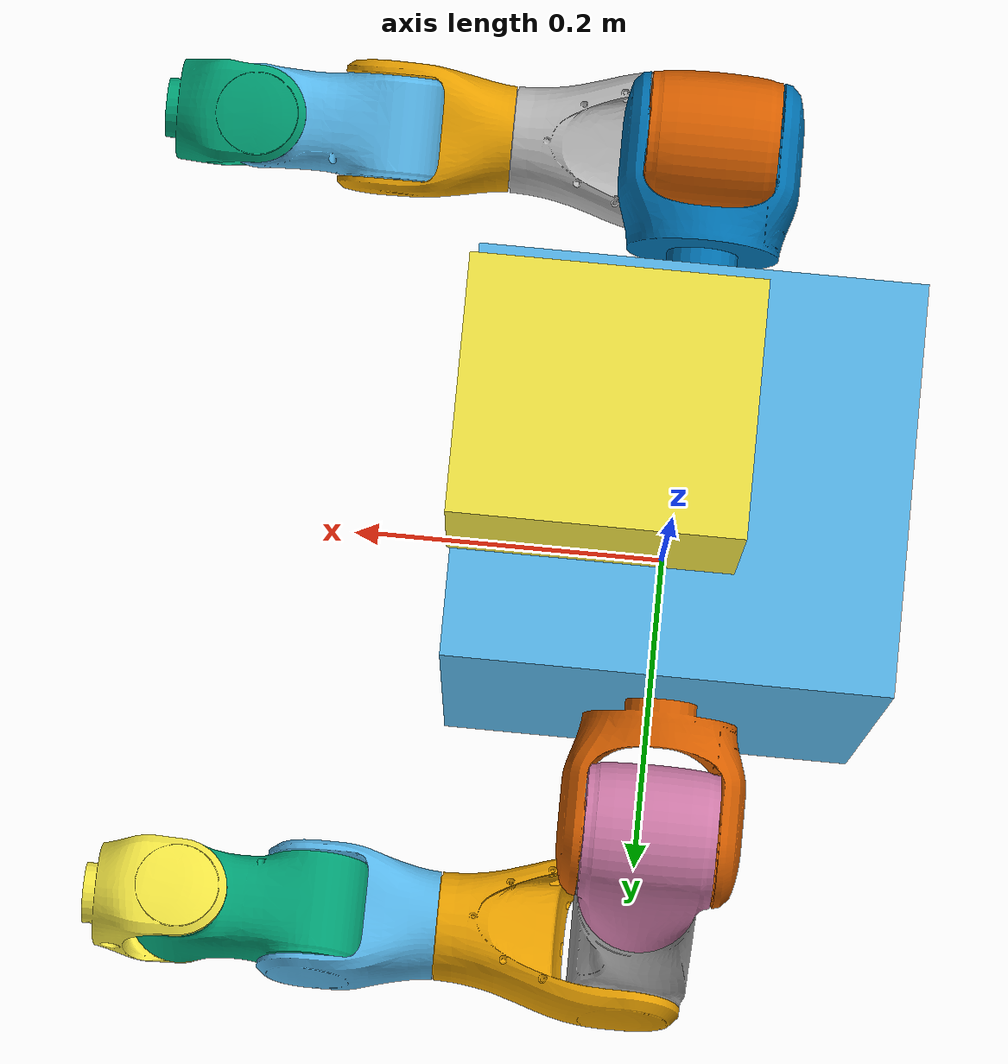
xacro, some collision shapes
<?xml version="1.0" encoding="utf-8"?>

<robot name="atom" xmlns:xacro="http://www.ros.org/wiki/xacro">

	<xacro:property name="type" value="upper"/>

	<link name="pelvis">
		<inertial>
			<origin xyz="0.0006 0.0000 -0.0998"/>
			<mass value="6.5370"/>
			<inertia ixx="0.0344" ixy="0.0000" ixz="0.0001" iyy="0.0292" iyz="0.0000" izz="0.0214"/>
		</inertial>
		<visual>
			<geometry>
				<mesh filename="file://$(find dobot_atom_description)/meshes/body/pelvis.obj"/>
			</geometry>
		</visual>
	</link>

	<!-- Without Left Leg -->

	<!-- Without Right Leg -->
	<!-- xacro:AtomLeg name="" direction="-1" parent_link="pelvis"/-->

	<!-- Upper Body (Torso, Head, IMU) -->
	<xacro:include filename="$(find dobot_atom_description)/xacro/upper_body.xacro"/>
	<xacro:AtomUpperBody parent_link="pelvis" type="upper"/>

	<!-- Left Arm -->
	<xacro:include filename="$(find dobot_atom_description)/xacro/arm.xacro"/>
	<xacro:AtomArm name="left" direction="1" parent_link="torso_link"/>

	<!-- Right Arm -->
	<xacro:AtomArm name="right" direction="-1" parent_link="torso_link"/>

</robot>

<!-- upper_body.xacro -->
<robot name="Dobot_Atom" xmlns:xacro="http://www.ros.org/wiki/xacro">

	<xacro:macro name="AtomUpperBody" params="parent_link type">

		<link name="torso_link">
			<inertial>
				<origin xyz="-0.0155931 0 0.2199051"/>
				<mass value="14.0858"/>
				<inertia ixx="0.1671325" ixy="0.0000" ixz="-0.0005474" iyy="0.1806563" iyz="0.0000" izz="0.0672070"/>
			</inertial>
			<visual>
				<geometry>
					<mesh filename="file://$(find dobot_atom_description)/meshes/body/torso.obj"/>
				</geometry>
			</visual>
			<collision>
				<origin xyz="0 0 0.2"/>
				<geometry>
					<box size="0.26 0.24 0.4"/>
				</geometry>
			</collision>
		</link>

		<xacro:if value="${type == 'upper'}">
			<!-- upper 模式锁死躯干 -->
			<joint name="torso_joint" type="fixed">
				<parent link="${parent_link}"/>
				<child link="torso_link"/>
			</joint>
		</xacro:if>

		<xacro:if value="${type != 'upper'}">
		<!-- full 模式保持原来的可旋转关节 -->
			<joint name="torso_joint" type="revolute">
				<parent link="${parent_link}"/>
				<child link="torso_link"/>
				<axis xyz="0 0 1"/>
				<limit lower="-2.7925" upper="2.7925" effort="1000" velocity="100"/>
			</joint>
		</xacro:if>

		<link name="head_yaw_link">
			<inertial>
				<origin xyz="0.0000 -0.0027 0.0383"/>
				<mass value="0.4387"/>
				<inertia ixx="0.0003" ixy="0.0000" ixz="0.0000" iyy="0.0002" iyz="0.0000" izz="0.0002"/>
			</inertial>
			<visual>
				<geometry>
					<mesh filename="file://$(find dobot_atom_description)/meshes/body/head_yaw.obj"/>
				</geometry>
			</visual>
		</link>

		<joint name="head_yaw_joint" type="revolute">
			<origin xyz="0 0 0.4177"/>
			<parent link="torso_link"/>
			<child link="head_yaw_link"/>
			<axis xyz="0 0 1"/>
			<limit lower="-1.57" upper="1.57" effort="12" velocity="6.28"/>
		</joint>

		<link name="head_pitch_link">
			<inertial>
				<origin xyz="0.0337 0.0004 0.1204"/>
				<mass value="1.3341"/>
				<inertia ixx="0.0042" ixy="0.0000" ixz="0.0001" iyy="0.0070" iyz="0.0000" izz="0.0067"/>
			</inertial>
			<visual>
				<geometry>
					<mesh filename="file://$(find dobot_atom_description)/meshes/body/head_pitch.obj"/>
				</geometry>
			</visual>
			<collision>
				<origin xyz="0.05 0 0.1"/>
				<geometry>
					<box size="0.16 0.14 0.14"/>
				</geometry>
			</collision>
		</link>

		<joint name="head_pitch_joint" type="revolute">
			<origin xyz="0 0 0.041"/>
			<parent link="head_yaw_link"/>
			<child link="head_pitch_link"/>
			<axis xyz="0 1 0"/>
			<limit lower="-1.57" upper="0.6981" effort="12" velocity="6.28"/>
		</joint>

		<!-- imu -->
		<link name="imu_link">
		</link>
		<joint name="imu_joint" type="fixed">
			<origin xyz="0 0 -0.18"/>
			<parent link="torso_link"/>
			<child link="imu_link"/>
		</joint>

	</xacro:macro>

</robot>

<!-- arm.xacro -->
<robot name="atom_arm" xmlns:xacro="http://www.ros.org/wiki/xacro">

	<xacro:macro name="AtomArm" params="name direction:=1 parent_link">
		<xacro:property name="prefix" value="${name + '_' if name else ''}"/>

		<!-- Shoulder Pitch Link -->
		<link name="${prefix}shoulder_pitch_link">
			<inertial>
				<origin xyz="0.0044 ${direction*0.0368} 0.0000"/>
				<mass value="0.4473"/>
				<inertia ixx="0.0007" ixy="${direction*0.0001}" ixz="-0.0001" iyy="0.0008" iyz="0.0000" izz="0.0010"/>
			</inertial>
			<visual>
				<geometry>
					<mesh filename="file://$(find dobot_atom_description)/meshes/arm/link1.obj" scale="1 ${direction} 1"/>
				</geometry>
			</visual>
		</link>

		<joint name="${prefix}shoulder_pitch_joint" type="revolute">
			<origin xyz="0 ${direction*0.128} 0.333"/>
			<parent link="${parent_link}"/>
			<child link="${prefix}shoulder_pitch_link"/>
			<axis xyz="0 1 0"/>
			<limit lower="-2.97" upper="2.97" effort="56" velocity="2.62"/>
		</joint>

		<!-- Shoulder Roll Link -->
		<link name="${prefix}shoulder_roll_link">
			<inertial>
				<origin xyz="0.0124 ${direction*0.0009} -0.0545"/>
				<mass value="1.7940"/>
				<inertia ixx="0.0066" ixy="0.0000" ixz="0.0004" iyy="0.0067" iyz="0.0000" izz="0.0013"/>
			</inertial>
			<visual>
				<geometry>
					<mesh filename="file://$(find dobot_atom_description)/meshes/arm/link2.obj" scale="1 ${direction} 1"/>
				</geometry>
			</visual>

		</link>

		<joint name="${prefix}shoulder_roll_joint" type="revolute">
			<origin xyz="0 ${direction*0.078} 0" rpy="${direction*0.18} 0 0"/>
			<parent link="${prefix}shoulder_pitch_link"/>
			<child link="${prefix}shoulder_roll_link"/>
			<axis xyz="1 0 0"/>
			<limit lower="${-0.43 if direction > 0 else -3.14}" upper="${3.14 if direction > 0 else 0.43}" effort="36"
						 velocity="2.62"/>
		</joint>

		<!-- Shoulder Yaw Link -->
		<link name="${prefix}shoulder_yaw_link">
			<inertial>
				<origin xyz="-0.0014 ${direction*0.0066} -0.1179"/>
				<mass value="0.9798"/>
				<inertia ixx="0.0018" ixy="0.0000" ixz="-0.0001" iyy="0.0016" iyz="${-direction*0.0001}" izz="0.0008"/>
			</inertial>
			<visual>
				<geometry>
					<mesh filename="file://$(find dobot_atom_description)/meshes/arm/link3.obj"/>
				</geometry>
			</visual>
			<collision>
				<origin xyz="0 0 0"/>
				<geometry>
					<cylinder radius="0.04" length="0.20"/>
				</geometry>
			</collision>
		</link>

		<joint name="${prefix}shoulder_yaw_joint" type="revolute">
			<origin xyz="0 0 -0.135"/>
			<parent link="${prefix}shoulder_roll_link"/>
			<child link="${prefix}shoulder_yaw_link"/>
			<axis xyz="0 0 1"/>
			<limit lower="-2.97" upper="2.97" effort="36" velocity="2.62"/>
		</joint>

		<!-- Elbow Pitch Link -->
		<link name="${prefix}elbow_pitch_link">
			<inertial>
				<origin xyz="0.0903 ${direction*0.0016} -0.0003"/>
				<mass value="0.8548"/>
				<inertia ixx="0.0008" ixy="${-direction*0.0001}" ixz="0.0000" iyy="0.0025" iyz="${-direction*0.0000}"
								 izz="0.0028"/>
			</inertial>
			<visual>
				<geometry>
					<mesh filename="file://$(find dobot_atom_description)/meshes/arm/link4.obj"/>
				</geometry>
			</visual>
			<collision>
				<origin rpy="1.57079632679 0 0"/>
				<geometry>
					<cylinder radius="0.04" length="0.11"/>
				</geometry>
			</collision>
		</link>

		<joint name="${prefix}elbow_pitch_joint" type="revolute">
			<origin xyz="0.00044198773719138 0 -0.130000000000198"/>
			<parent link="${prefix}shoulder_yaw_link"/>
			<child link="${prefix}elbow_pitch_link"/>
			<axis xyz="0 1 0"/>
			<limit lower="-1.57" upper="2" effort="36" velocity="2.62"/>
		</joint>

		<!-- Elbow Roll Link -->
		<link name="${prefix}elbow_roll_link">
			<inertial>
				<origin xyz="0.0270 ${direction*0.0018} -0.0002"/>
				<mass value="0.2126"/>
				<inertia ixx="0.0003" ixy="0.0000" ixz="0.0000" iyy="0.0002" iyz="0.0000" izz="0.0003"/>
			</inertial>
			<visual>
				<geometry>
					<mesh filename="file://$(find dobot_atom_description)/meshes/arm/link5.obj"/>
				</geometry>
			</visual>
			<collision>
                <origin
				    xyz="-0.04 0 0"
				    rpy="0 1.57079632679 0"/>
                <geometry>
                    <cylinder radius="0.045" length="0.15"/>
                </geometry>
            </collision>
		</link>

		<joint name="${prefix}elbow_roll_joint" type="revolute">
			<origin xyz="0.1453 0 0"/>
			<parent link="${prefix}elbow_pitch_link"/>
			<child link="${prefix}elbow_roll_link"/>
			<axis xyz="1 0 0"/>
			<limit lower="-2.97" upper="2.97" effort="18.6" velocity="2.62"/>
		</joint>

		<!-- Wrist Pitch Link -->
		<link name="${prefix}wrist_pitch_link">
			<inertial>
				<origin xyz="0.0421 ${-direction*0.0042} -0.0038"/>
				<mass value="1.2573"/>
				<inertia ixx="0.0008" ixy="${direction*0.0002}" ixz="-0.0002" iyy="0.0029" iyz="0.0000" izz="0.0029"/>
			</inertial>
			<visual>
				<geometry>
					<mesh filename="file://$(find dobot_atom_description)/meshes/arm/link6.obj" scale="1 ${direction} 1"/>
				</geometry>
			</visual>
			<collision>
				<origin rpy="1.57079632679 0 0"/>
				<geometry>
					<cylinder radius="0.035" length="0.09"/>
				</geometry>
			</collision>
		</link>

		<joint name="${prefix}wrist_pitch_joint" type="revolute">
			<origin xyz="0.05345 0 0"/>
			<parent link="${prefix}elbow_roll_link"/>
			<child link="${prefix}wrist_pitch_link"/>
			<axis xyz="0 1 0"/>
			<limit lower="-1.57" upper="1.57" effort="18.6" velocity="2.62"/>
		</joint>

		<!-- Wrist Yaw Link -->
		<link name="${prefix}wrist_yaw_link">
			<inertial>
				<origin xyz="0.0290 ${direction*0.0004} 0.0010"/>
				<mass value="0.3340"/>
				<inertia ixx="0.0003" ixy="0.0000" ixz="0.0000" iyy="0.0004" iyz="${-direction*0.0000}" izz="0.0003"/>
			</inertial>
			<visual>
				<geometry>
					<mesh filename="file://$(find dobot_atom_description)/meshes/arm/link7.obj" scale="1 ${direction} 1"/>
				</geometry>
			</visual>
			<collision>
                <origin rpy="0 0 0"/>
                <geometry>
                    <cylinder radius="0.035" length="0.09"/>
                </geometry>
            </collision>
		</link>

		<joint name="${prefix}wrist_yaw_joint" type="revolute">
			<origin xyz="0.085 0 0"/>
			<parent link="${prefix}wrist_pitch_link"/>
			<child link="${prefix}wrist_yaw_link"/>
			<axis xyz="0 0 1"/>
			<limit lower="-1.57" upper="1.57" effort="18.6" velocity="2.62"/>
		</joint>

	</xacro:macro>

</robot>
